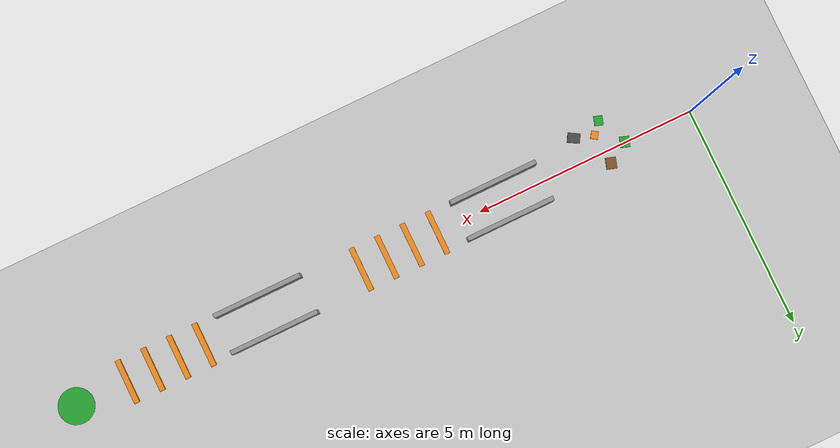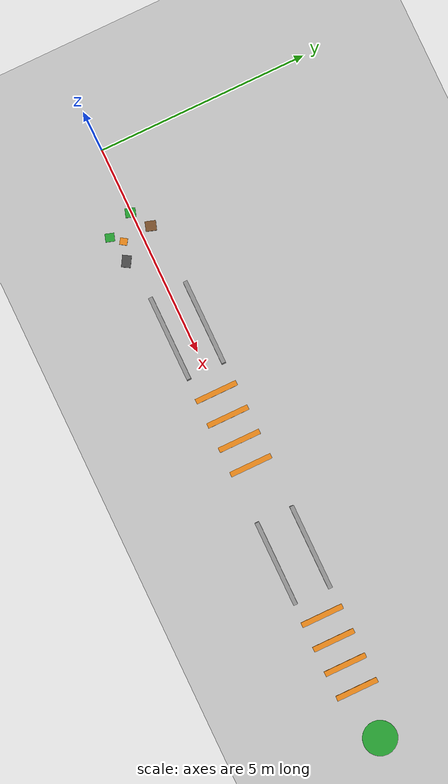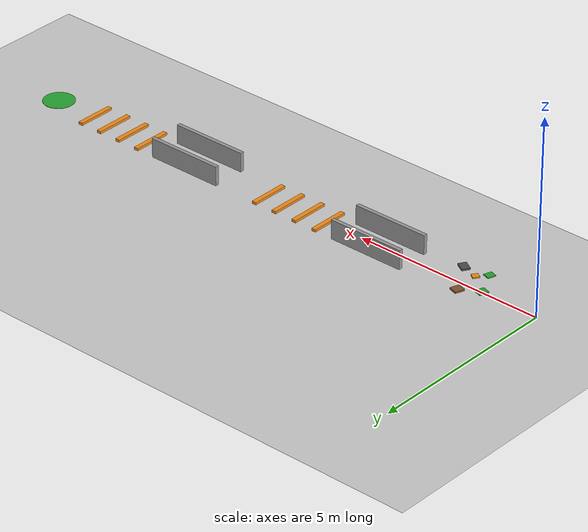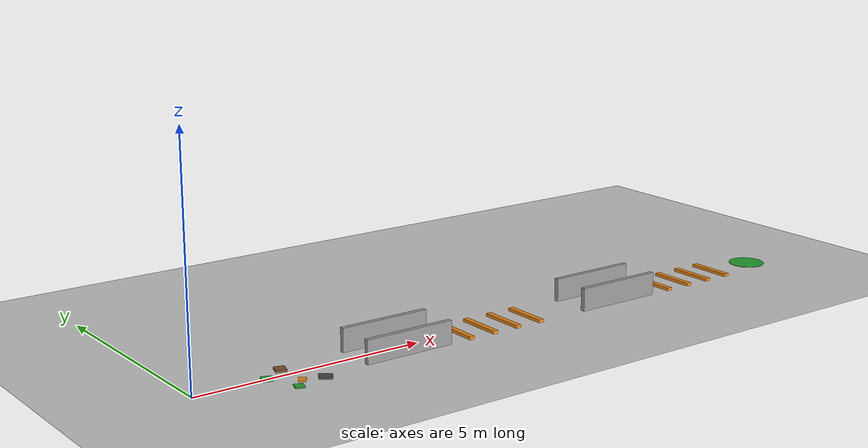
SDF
<?xml version="1.0" ?>
<!-- 由 omni_world.py 自动生成: scene=mixed seed=8 -->
<sdf version="1.5">
  <world name="mixed">
    <physics type="ode">
      <type>world</type>
      <max_step_size>0.001</max_step_size>
      <real_time_update_rate>1000</real_time_update_rate>
      <iters>500</iters>
    </physics>
    <include><uri>model://sun</uri></include>
    <include><uri>model://ground_plane</uri></include>
    <model name="mx_rough_0_0">
      <static>true</static>
      <pose>2.063 -0.430 0.016 0.0000 0.0000 2.5487</pose>
      <link name="link">
        <collision name="collision">
          <geometry><box><size>0.157 0.171 0.033</size></box></geometry>
          <surface><friction><ode><mu>1.0</mu><mu2>1.0</mu2></ode></friction></surface>
        </collision>
        <visual name="visual">
          <geometry><box><size>0.157 0.171 0.033</size></box></geometry>
          <material><script><uri>file://media/materials/scripts/gazebo.material</uri>
            <name>Gazebo/Orange</name></script></material>
        </visual>
      </link>
    </model>
    <model name="mx_rough_0_1">
      <static>true</static>
      <pose>1.545 -0.018 0.017 0.0000 0.0000 2.8191</pose>
      <link name="link">
        <collision name="collision">
          <geometry><box><size>0.209 0.236 0.034</size></box></geometry>
          <surface><friction><ode><mu>1.0</mu><mu2>1.0</mu2></ode></friction></surface>
        </collision>
        <visual name="visual">
          <geometry><box><size>0.209 0.236 0.034</size></box></geometry>
          <material><script><uri>file://media/materials/scripts/gazebo.material</uri>
            <name>Gazebo/Green</name></script></material>
        </visual>
      </link>
    </model>
    <model name="mx_rough_0_2">
      <static>true</static>
      <pose>1.851 -0.672 0.012 0.0000 0.0000 2.8339</pose>
      <link name="link">
        <collision name="collision">
          <geometry><box><size>0.190 0.211 0.023</size></box></geometry>
          <surface><friction><ode><mu>1.0</mu><mu2>1.0</mu2></ode></friction></surface>
        </collision>
        <visual name="visual">
          <geometry><box><size>0.190 0.211 0.023</size></box></geometry>
          <material><script><uri>file://media/materials/scripts/gazebo.material</uri>
            <name>Gazebo/Green</name></script></material>
        </visual>
      </link>
    </model>
    <model name="mx_rough_0_3">
      <static>true</static>
      <pose>2.494 -0.564 0.023 0.0000 0.0000 2.6061</pose>
      <link name="link">
        <collision name="collision">
          <geometry><box><size>0.272 0.208 0.045</size></box></geometry>
          <surface><friction><ode><mu>1.0</mu><mu2>1.0</mu2></ode></friction></surface>
        </collision>
        <visual name="visual">
          <geometry><box><size>0.272 0.208 0.045</size></box></geometry>
          <material><script><uri>file://media/materials/scripts/gazebo.material</uri>
            <name>Gazebo/DarkGrey</name></script></material>
        </visual>
      </link>
    </model>
    <model name="mx_rough_0_4">
      <static>true</static>
      <pose>2.008 0.268 0.022 0.0000 0.0000 2.8318</pose>
      <link name="link">
        <collision name="collision">
          <geometry><box><size>0.225 0.247 0.043</size></box></geometry>
          <surface><friction><ode><mu>1.0</mu><mu2>1.0</mu2></ode></friction></surface>
        </collision>
        <visual name="visual">
          <geometry><box><size>0.225 0.247 0.043</size></box></geometry>
          <material><script><uri>file://media/materials/scripts/gazebo.material</uri>
            <name>Gazebo/Brown</name></script></material>
        </visual>
      </link>
    </model>
    <model name="mx_wl_1">
      <static>true</static>
      <pose>4.500 0.425 0.250 0.0000 0.0000 0.0000</pose>
      <link name="link">
        <collision name="collision">
          <geometry><box><size>2.000 0.100 0.500</size></box></geometry>
          <surface><friction><ode><mu>1.0</mu><mu2>1.0</mu2></ode></friction></surface>
        </collision>
        <visual name="visual">
          <geometry><box><size>2.000 0.100 0.500</size></box></geometry>
          <material><script><uri>file://media/materials/scripts/gazebo.material</uri>
            <name>Gazebo/Grey</name></script></material>
        </visual>
      </link>
    </model>
    <model name="mx_wr_1">
      <static>true</static>
      <pose>4.500 -0.425 0.250 0.0000 0.0000 0.0000</pose>
      <link name="link">
        <collision name="collision">
          <geometry><box><size>2.000 0.100 0.500</size></box></geometry>
          <surface><friction><ode><mu>1.0</mu><mu2>1.0</mu2></ode></friction></surface>
        </collision>
        <visual name="visual">
          <geometry><box><size>2.000 0.100 0.500</size></box></geometry>
          <material><script><uri>file://media/materials/scripts/gazebo.material</uri>
            <name>Gazebo/Grey</name></script></material>
        </visual>
      </link>
    </model>
    <model name="mx_bump_2_0">
      <static>true</static>
      <pose>6.000 0.000 0.033 0.0000 0.0000 0.0000</pose>
      <link name="link">
        <collision name="collision">
          <geometry><box><size>0.120 1.000 0.065</size></box></geometry>
          <surface><friction><ode><mu>1.0</mu><mu2>1.0</mu2></ode></friction></surface>
        </collision>
        <visual name="visual">
          <geometry><box><size>0.120 1.000 0.065</size></box></geometry>
          <material><script><uri>file://media/materials/scripts/gazebo.material</uri>
            <name>Gazebo/Orange</name></script></material>
        </visual>
      </link>
    </model>
    <model name="mx_bump_2_1">
      <static>true</static>
      <pose>6.600 0.000 0.033 0.0000 0.0000 0.0000</pose>
      <link name="link">
        <collision name="collision">
          <geometry><box><size>0.120 1.000 0.065</size></box></geometry>
          <surface><friction><ode><mu>1.0</mu><mu2>1.0</mu2></ode></friction></surface>
        </collision>
        <visual name="visual">
          <geometry><box><size>0.120 1.000 0.065</size></box></geometry>
          <material><script><uri>file://media/materials/scripts/gazebo.material</uri>
            <name>Gazebo/Orange</name></script></material>
        </visual>
      </link>
    </model>
    <model name="mx_bump_2_2">
      <static>true</static>
      <pose>7.200 0.000 0.033 0.0000 0.0000 0.0000</pose>
      <link name="link">
        <collision name="collision">
          <geometry><box><size>0.120 1.000 0.065</size></box></geometry>
          <surface><friction><ode><mu>1.0</mu><mu2>1.0</mu2></ode></friction></surface>
        </collision>
        <visual name="visual">
          <geometry><box><size>0.120 1.000 0.065</size></box></geometry>
          <material><script><uri>file://media/materials/scripts/gazebo.material</uri>
            <name>Gazebo/Orange</name></script></material>
        </visual>
      </link>
    </model>
    <model name="mx_bump_2_3">
      <static>true</static>
      <pose>7.800 0.000 0.033 0.0000 0.0000 0.0000</pose>
      <link name="link">
        <collision name="collision">
          <geometry><box><size>0.120 1.000 0.065</size></box></geometry>
          <surface><friction><ode><mu>1.0</mu><mu2>1.0</mu2></ode></friction></surface>
        </collision>
        <visual name="visual">
          <geometry><box><size>0.120 1.000 0.065</size></box></geometry>
          <material><script><uri>file://media/materials/scripts/gazebo.material</uri>
            <name>Gazebo/Orange</name></script></material>
        </visual>
      </link>
    </model>
    <model name="mx_wl_3">
      <static>true</static>
      <pose>10.000 0.425 0.250 0.0000 0.0000 0.0000</pose>
      <link name="link">
        <collision name="collision">
          <geometry><box><size>2.000 0.100 0.500</size></box></geometry>
          <surface><friction><ode><mu>1.0</mu><mu2>1.0</mu2></ode></friction></surface>
        </collision>
        <visual name="visual">
          <geometry><box><size>2.000 0.100 0.500</size></box></geometry>
          <material><script><uri>file://media/materials/scripts/gazebo.material</uri>
            <name>Gazebo/Grey</name></script></material>
        </visual>
      </link>
    </model>
    <model name="mx_wr_3">
      <static>true</static>
      <pose>10.000 -0.425 0.250 0.0000 0.0000 0.0000</pose>
      <link name="link">
        <collision name="collision">
          <geometry><box><size>2.000 0.100 0.500</size></box></geometry>
          <surface><friction><ode><mu>1.0</mu><mu2>1.0</mu2></ode></friction></surface>
        </collision>
        <visual name="visual">
          <geometry><box><size>2.000 0.100 0.500</size></box></geometry>
          <material><script><uri>file://media/materials/scripts/gazebo.material</uri>
            <name>Gazebo/Grey</name></script></material>
        </visual>
      </link>
    </model>
    <model name="mx_bump_4_0">
      <static>true</static>
      <pose>11.500 0.000 0.033 0.0000 0.0000 0.0000</pose>
      <link name="link">
        <collision name="collision">
          <geometry><box><size>0.120 1.000 0.065</size></box></geometry>
          <surface><friction><ode><mu>1.0</mu><mu2>1.0</mu2></ode></friction></surface>
        </collision>
        <visual name="visual">
          <geometry><box><size>0.120 1.000 0.065</size></box></geometry>
          <material><script><uri>file://media/materials/scripts/gazebo.material</uri>
            <name>Gazebo/Orange</name></script></material>
        </visual>
      </link>
    </model>
    <model name="mx_bump_4_1">
      <static>true</static>
      <pose>12.100 0.000 0.033 0.0000 0.0000 0.0000</pose>
      <link name="link">
        <collision name="collision">
          <geometry><box><size>0.120 1.000 0.065</size></box></geometry>
          <surface><friction><ode><mu>1.0</mu><mu2>1.0</mu2></ode></friction></surface>
        </collision>
        <visual name="visual">
          <geometry><box><size>0.120 1.000 0.065</size></box></geometry>
          <material><script><uri>file://media/materials/scripts/gazebo.material</uri>
            <name>Gazebo/Orange</name></script></material>
        </visual>
      </link>
    </model>
    <model name="mx_bump_4_2">
      <static>true</static>
      <pose>12.700 0.000 0.033 0.0000 0.0000 0.0000</pose>
      <link name="link">
        <collision name="collision">
          <geometry><box><size>0.120 1.000 0.065</size></box></geometry>
          <surface><friction><ode><mu>1.0</mu><mu2>1.0</mu2></ode></friction></surface>
        </collision>
        <visual name="visual">
          <geometry><box><size>0.120 1.000 0.065</size></box></geometry>
          <material><script><uri>file://media/materials/scripts/gazebo.material</uri>
            <name>Gazebo/Orange</name></script></material>
        </visual>
      </link>
    </model>
    <model name="mx_bump_4_3">
      <static>true</static>
      <pose>13.300 0.000 0.033 0.0000 0.0000 0.0000</pose>
      <link name="link">
        <collision name="collision">
          <geometry><box><size>0.120 1.000 0.065</size></box></geometry>
          <surface><friction><ode><mu>1.0</mu><mu2>1.0</mu2></ode></friction></surface>
        </collision>
        <visual name="visual">
          <geometry><box><size>0.120 1.000 0.065</size></box></geometry>
          <material><script><uri>file://media/materials/scripts/gazebo.material</uri>
            <name>Gazebo/Orange</name></script></material>
        </visual>
      </link>
    </model>
    <model name="goal">
      <static>true</static>
      <pose>14.500 0.000 0.005 0 0 0</pose>
      <link name="link">
        <visual name="visual">
          <geometry><cylinder><radius>0.400</radius><length>0.01</length></cylinder></geometry>
          <material><script><uri>file://media/materials/scripts/gazebo.material</uri>
            <name>Gazebo/Green</name></script></material>
        </visual>
      </link>
    </model>

  </world>
</sdf>
